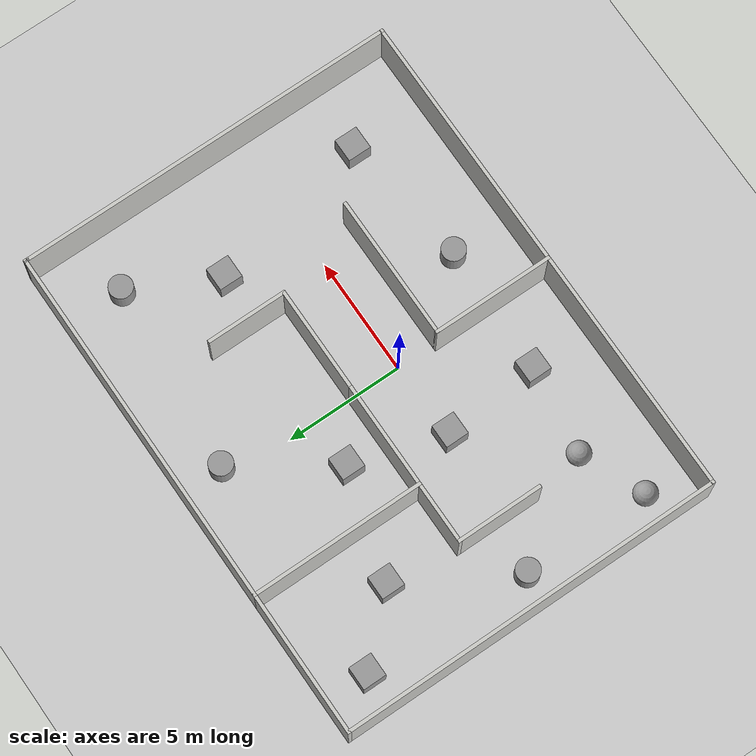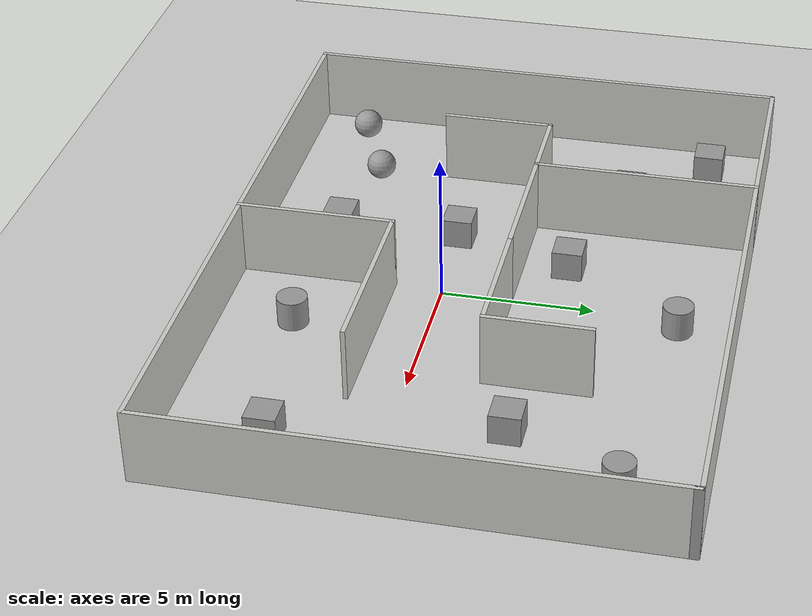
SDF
<sdf version="1.6">
 <world name="default">
  <light name="sun" type="directional">
   <pose>0 0 10 0 -0 0</pose>
   <diffuse>0.8 0.8 0.8 1</diffuse>
   <specular>0.2 0.2 0.2 1</specular>
   <attenuation>
    <range>1000</range>
    <constant>0.9</constant>
    <linear>0.01</linear>
    <quadratic>0.001</quadratic>
   </attenuation>
   <direction>-0.5 0.1 -0.9</direction>
  </light>
  <model name="ground_plane">
   <static>1</static>
   <link name="link">
    <collision name="collision">
     <geometry><plane><normal>0 0 1</normal><size>100 100</size></plane></geometry>
     <surface>
      <contact><collide_bitmask>65535</collide_bitmask></contact>
      <friction><ode><mu>100</mu><mu2>50</mu2></ode></friction>
     </surface>
    </collision>
    <visual name="visual">
     <cast_shadows>0</cast_shadows>
     <geometry><plane><normal>0 0 1</normal><size>100 100</size></plane></geometry>
     <material>
      <script><uri>file://media/materials/scripts/gazebo.material</uri><name>Gazebo/Grey</name></script>
     </material>
    </visual>
   </link>
  </model>
  <gravity>0 0 -9.8</gravity>
  <magnetic_field>6e-06 2.3e-05 -4.2e-05</magnetic_field>
  <atmosphere type="adiabatic"/>
  <physics name="default_physics" default="0" type="ode">
   <max_step_size>0.001</max_step_size>
   <real_time_factor>1</real_time_factor>
   <real_time_update_rate>1000</real_time_update_rate>
  </physics>
  <scene><ambient>0.4 0.4 0.4 1</ambient><background>0.7 0.7 0.7 1</background><shadows>1</shadows></scene>
  <audio><device>default</device></audio>
  <spherical_coordinates>
   <surface_model>EARTH_WGS84</surface_model>
   <latitude_deg>0</latitude_deg>
   <longitude_deg>0</longitude_deg>
   <elevation>0</elevation>
   <heading_deg>0</heading_deg>
  </spherical_coordinates>
  <model name="Home1">
   <pose>0.11 1.42907 0 0 -0 0</pose>
   <link name="Wall_0">
    <collision name="Wall_0_Collision">
     <geometry><box><size>4.75 0.15 2.5</size></box></geometry>
     <pose>0 0 1.25 0 -0 0</pose>
    </collision>
    <visual name="Wall_0_Visual">
     <pose>0 0 1.25 0 -0 0</pose>
     <geometry><box><size>4.75 0.15 2.5</size></box></geometry>
     <material>
      <script><uri>file://media/materials/scripts/gazebo.material</uri><name>Gazebo/CeilingTiled</name></script>
      <ambient>1 1 1 1</ambient>
     </material>
     <meta><layer>0</layer></meta>
    </visual>
    <pose>-2.4 0.825 0 0 -0 3.14159</pose>
   </link>
   <link name="Wall_1">
    <collision name="Wall_1_Collision">
     <geometry><box><size>7.5 0.15 2.5</size></box></geometry>
     <pose>0 0 1.25 0 -0 0</pose>
    </collision>
    <visual name="Wall_1_Visual">
     <pose>0 0 1.25 0 -0 0</pose>
     <geometry><box><size>7.5 0.15 2.5</size></box></geometry>
     <material>
      <script><uri>file://media/materials/scripts/gazebo.material</uri><name>Gazebo/CeilingTiled</name></script>
      <ambient>1 1 1 1</ambient>
     </material>
     <meta><layer>0</layer></meta>
    </visual>
    <pose>-4.7 4.5 0 0 -0 1.5708</pose>
   </link>
   <link name="Wall_12">
    <collision name="Wall_12_Collision">
     <geometry><box><size>2.75 0.15 2.5</size></box></geometry>
     <pose>0 0 1.25 0 -0 0</pose>
    </collision>
    <visual name="Wall_12_Visual">
     <pose>0 0 1.25 0 -0 0</pose>
     <geometry><box><size>2.75 0.15 2.5</size></box></geometry>
     <material>
      <script><uri>file://media/materials/scripts/gazebo.material</uri><name>Gazebo/CeilingTiled</name></script>
      <ambient>1 1 1 1</ambient>
     </material>
     <meta><layer>0</layer></meta>
    </visual>
    <pose>-6 0.825 0 0 -0 3.14159</pose>
   </link>
   <link name="Wall_13">
    <collision name="Wall_13_Collision">
     <geometry><box><size>3.75 0.15 2.5</size></box></geometry>
     <pose>0 0 1.25 0 -0 0</pose>
    </collision>
    <visual name="Wall_13_Visual">
     <pose>0 0 1.25 0 -0 0</pose>
     <geometry><box><size>3.75 0.15 2.5</size></box></geometry>
     <material>
      <script><uri>file://media/materials/scripts/gazebo.material</uri><name>Gazebo/CeilingTiled</name></script>
      <ambient>1 1 1 1</ambient>
     </material>
     <meta><layer>0</layer></meta>
    </visual>
    <pose>-7.3 -0.975 0 0 -0 -1.5708</pose>
   </link>
   <link name="Wall_15">
    <collision name="Wall_15_Collision">
     <geometry><box><size>5.25 0.15 2.5</size></box></geometry>
     <pose>0 0 1.25 0 -0 0</pose>
    </collision>
    <visual name="Wall_15_Visual">
     <pose>0 0 1.25 0 -0 0</pose>
     <geometry><box><size>5.25 0.15 2.5</size></box></geometry>
     <material>
      <script><uri>file://media/materials/scripts/gazebo.material</uri><name>Gazebo/CeilingTiled</name></script>
      <ambient>1 1 1 1</ambient>
     </material>
     <meta><layer>0</layer></meta>
    </visual>
    <pose>-0.281036 -5.61685 0 0 -0 1.5708</pose>
   </link>
   <link name="Wall_17">
    <collision name="Wall_17_Collision">
     <geometry><box><size>4.5 0.15 2.5</size></box></geometry>
     <pose>0 0 1.25 0 -0 0</pose>
    </collision>
    <visual name="Wall_17_Visual">
     <pose>0 0 1.25 0 -0 0</pose>
     <geometry><box><size>4.5 0.15 2.5</size></box></geometry>
     <material>
      <script><uri>file://media/materials/scripts/gazebo.material</uri><name>Gazebo/CeilingTiled</name></script>
      <ambient>1 1 1 1</ambient>
     </material>
     <meta><layer>0</layer></meta>
    </visual>
    <pose>2.075 0.825 0 0 -0 0</pose>
   </link>
   <link name="Wall_19">
    <collision name="Wall_19_Collision">
     <geometry><box><size>6.25 0.15 2.5</size></box></geometry>
     <pose>0 0 1.25 0 -0 0</pose>
    </collision>
    <visual name="Wall_19_Visual">
     <pose>0 0 1.25 0 -0 0</pose>
     <geometry><box><size>6.25 0.15 2.5</size></box></geometry>
     <material>
      <script><uri>file://media/materials/scripts/gazebo.material</uri><name>Gazebo/CeilingTiled</name></script>
      <ambient>1 1 1 1</ambient>
     </material>
     <meta><layer>0</layer></meta>
    </visual>
    <pose>2.76896 -3.06685 0 0 -0 0</pose>
   </link>
   <link name="Wall_2">
    <collision name="Wall_2_Collision">
     <geometry><box><size>6.25 0.15 2.5</size></box></geometry>
     <pose>0 0 1.25 0 -0 0</pose>
    </collision>
    <visual name="Wall_2_Visual">
     <pose>0 0 1.25 0 -0 0</pose>
     <geometry><box><size>6.25 0.15 2.5</size></box></geometry>
     <material>
      <script><uri>file://media/materials/scripts/gazebo.material</uri><name>Gazebo/CeilingTiled</name></script>
      <ambient>1 1 1 1</ambient>
     </material>
     <meta><layer>0</layer></meta>
    </visual>
    <pose>-7.75 8.175 0 0 -0 3.14159</pose>
   </link>
   <link name="Wall_21">
    <collision name="Wall_21_Collision">
     <geometry><box><size>3.5 0.15 2.5</size></box></geometry>
     <pose>0 0 1.25 0 -0 0</pose>
    </collision>
    <visual name="Wall_21_Visual">
     <pose>0 0 1.25 0 -0 0</pose>
     <geometry><box><size>3.5 0.15 2.5</size></box></geometry>
     <material>
      <script><uri>file://media/materials/scripts/gazebo.material</uri><name>Gazebo/CeilingTiled</name></script>
      <ambient>1 1 1 1</ambient>
     </material>
     <meta><layer>0</layer></meta>
    </visual>
    <pose>4.25 2.5 0 0 -0 1.5708</pose>
   </link>
   <link name="Wall_3">
    <collision name="Wall_3_Collision">
     <geometry><box><size>16.5 0.15 2.5</size></box></geometry>
     <pose>0 0 1.25 0 -0 0</pose>
    </collision>
    <visual name="Wall_3_Visual">
     <pose>0 0 1.25 0 -0 0</pose>
     <geometry><box><size>16.5 0.15 2.5</size></box></geometry>
     <material>
      <script><uri>file://media/materials/scripts/gazebo.material</uri><name>Gazebo/CeilingTiled</name></script>
      <ambient>1 1 1 1</ambient>
     </material>
     <meta><layer>0</layer></meta>
    </visual>
    <pose>-10.8 0 0 0 -0 -1.5708</pose>
   </link>
   <link name="Wall_4">
    <collision name="Wall_4_Collision">
     <geometry><box><size>21.75 0.15 2.5</size></box></geometry>
     <pose>0 0 1.25 0 -0 0</pose>
    </collision>
    <visual name="Wall_4_Visual">
     <pose>0 0 1.25 0 -0 0</pose>
     <geometry><box><size>21.75 0.15 2.5</size></box></geometry>
     <material>
      <script><uri>file://media/materials/scripts/gazebo.material</uri><name>Gazebo/CeilingTiled</name></script>
      <ambient>1 1 1 1</ambient>
     </material>
     <meta><layer>0</layer></meta>
    </visual>
    <pose>-0 -8.175 0 0 -0 0</pose>
   </link>
   <link name="Wall_5">
    <collision name="Wall_5_Collision">
     <geometry><box><size>16.5 0.15 2.5</size></box></geometry>
     <pose>0 0 1.25 0 -0 0</pose>
    </collision>
    <visual name="Wall_5_Visual">
     <pose>0 0 1.25 0 -0 0</pose>
     <geometry><box><size>16.5 0.15 2.5</size></box></geometry>
     <material>
      <script><uri>file://media/materials/scripts/gazebo.material</uri><name>Gazebo/CeilingTiled</name></script>
      <ambient>1 1 1 1</ambient>
     </material>
     <meta><layer>0</layer></meta>
    </visual>
    <pose>10.8 0 0 0 -0 1.5708</pose>
   </link>
   <link name="Wall_6">
    <collision name="Wall_6_Collision">
     <geometry><box><size>0.3 0.15 2.5</size></box></geometry>
     <pose>0 0 1.25 0 -0 0</pose>
    </collision>
    <visual name="Wall_6_Visual">
     <pose>0 0 1.25 0 -0 0</pose>
     <geometry><box><size>0.3 0.15 2.5</size></box></geometry>
     <material>
      <script><uri>file://media/materials/scripts/gazebo.material</uri><name>Gazebo/Grey</name></script>
      <ambient>1 1 1 1</ambient>
     </material>
     <meta><layer>0</layer></meta>
    </visual>
    <pose>10.8 8.1 0 0 -0 -1.5708</pose>
   </link>
   <link name="Wall_9">
    <collision name="Wall_9_Collision">
     <geometry><box><size>15.65 0.15 2.5</size></box></geometry>
     <pose>0 0 1.25 0 -0 0</pose>
    </collision>
    <visual name="Wall_9_Visual">
     <pose>0 0 1.25 0 -0 0</pose>
     <geometry><box><size>15.65 0.15 2.5</size></box></geometry>
     <material>
      <script><uri>file://media/materials/scripts/gazebo.material</uri><name>Gazebo/CeilingTiled</name></script>
      <ambient>1 1 1 1</ambient>
     </material>
     <meta><layer>0</layer></meta>
    </visual>
    <pose>3.05 8.175 0 0 -0 0</pose>
   </link>
   <static>1</static>
  </model>
  <model name="unit_box">
   <pose>-2.10298 3.82672 0.499995 0 1e-05 0</pose>
   <link name="link">
    <inertial>
     <mass>1</mass>
     <inertia>
      <ixx>0.166667</ixx>
      <ixy>0</ixy>
      <ixz>0</ixz>
      <iyy>0.166667</iyy>
      <iyz>0</iyz>
      <izz>0.166667</izz>
     </inertia>
    </inertial>
    <collision name="collision"><geometry><box><size>1 1 1</size></box></geometry></collision>
    <visual name="visual">
     <geometry><box><size>1 1 1</size></box></geometry>
     <material>
      <script><name>Gazebo/Grey</name><uri>file://media/materials/scripts/gazebo.material</uri></script>
     </material>
    </visual>
   </link>
  </model>
  <model name="unit_box_0">
   <pose>6.68602 3.48911 0.499995 -1e-05 -0 -0</pose>
   <link name="link">
    <inertial>
     <mass>1</mass>
     <inertia>
      <ixx>0.166667</ixx>
      <ixy>0</ixy>
      <ixz>0</ixz>
      <iyy>0.166667</iyy>
      <iyz>0</iyz>
      <izz>0.166667</izz>
     </inertia>
    </inertial>
    <collision name="collision"><geometry><box><size>1 1 1</size></box></geometry></collision>
    <visual name="visual">
     <geometry><box><size>1 1 1</size></box></geometry>
     <material>
      <script><name>Gazebo/Grey</name><uri>file://media/materials/scripts/gazebo.material</uri></script>
     </material>
    </visual>
   </link>
  </model>
  <model name="unit_box_1">
   <pose>8.19061 -3.50544 0.499995 0 1e-05 0</pose>
   <link name="link">
    <inertial>
     <mass>1</mass>
     <inertia>
      <ixx>0.166667</ixx>
      <ixy>0</ixy>
      <ixz>0</ixz>
      <iyy>0.166667</iyy>
      <iyz>0</iyz>
      <izz>0.166667</izz>
     </inertia>
    </inertial>
    <collision name="collision"><geometry><box><size>1 1 1</size></box></geometry></collision>
    <visual name="visual">
     <geometry><box><size>1 1 1</size></box></geometry>
     <material>
      <script><name>Gazebo/Grey</name><uri>file://media/materials/scripts/gazebo.material</uri></script>
     </material>
    </visual>
   </link>
  </model>
  <model name="unit_box_2">
   <pose>-3.27465 -0.104765 0.499995 -1e-05 -0 -0</pose>
   <link name="link">
    <inertial>
     <mass>1</mass>
     <inertia>
      <ixx>0.166667</ixx>
      <ixy>0</ixy>
      <ixz>0</ixz>
      <iyy>0.166667</iyy>
      <iyz>0</iyz>
      <izz>0.166667</izz>
     </inertia>
    </inertial>
    <collision name="collision"><geometry><box><size>1 1 1</size></box></geometry></collision>
    <visual name="visual">
     <geometry><box><size>1 1 1</size></box></geometry>
     <material>
      <script><name>Gazebo/Grey</name><uri>file://media/materials/scripts/gazebo.material</uri></script>
     </material>
    </visual>
   </link>
  </model>
  <model name="unit_box_3">
   <pose>-9.07251 7.66894 0.499995 0 1e-05 0</pose>
   <link name="link">
    <inertial>
     <mass>1</mass>
     <inertia>
      <ixx>0.166667</ixx>
      <ixy>0</ixy>
      <ixz>0</ixz>
      <iyy>0.166667</iyy>
      <iyz>0</iyz>
      <izz>0.166667</izz>
     </inertia>
    </inertial>
    <collision name="collision"><geometry><box><size>1 1 1</size></box></geometry></collision>
    <visual name="visual">
     <geometry><box><size>1 1 1</size></box></geometry>
     <material>
      <script><name>Gazebo/Grey</name><uri>file://media/materials/scripts/gazebo.material</uri></script>
     </material>
    </visual>
   </link>
  </model>
  <model name="unit_box_4">
   <pose>-6.67561 5.17488 0.499995 -1e-05 -0 -0</pose>
   <link name="link">
    <inertial>
     <mass>1</mass>
     <inertia>
      <ixx>0.166667</ixx>
      <ixy>0</ixy>
      <ixz>0</ixz>
      <iyy>0.166667</iyy>
      <iyz>0</iyz>
      <izz>0.166667</izz>
     </inertia>
    </inertial>
    <collision name="collision"><geometry><box><size>1 1 1</size></box></geometry></collision>
    <visual name="visual">
     <geometry><box><size>1 1 1</size></box></geometry>
     <material>
      <script><name>Gazebo/Grey</name><uri>file://media/materials/scripts/gazebo.material</uri></script>
     </material>
    </visual>
   </link>
  </model>
  <model name="unit_box_5">
   <pose>-2.98305 -4.15362 0.499995 0 1e-05 0</pose>
   <link name="link">
    <inertial>
     <mass>1</mass>
     <inertia>
      <ixx>0.166667</ixx>
      <ixy>0</ixy>
      <ixz>0</ixz>
      <iyy>0.166667</iyy>
      <iyz>0</iyz>
      <izz>0.166667</izz>
     </inertia>
    </inertial>
    <collision name="collision"><geometry><box><size>1 1 1</size></box></geometry></collision>
    <visual name="visual">
     <geometry><box><size>1 1 1</size></box></geometry>
     <material>
      <script><name>Gazebo/Grey</name><uri>file://media/materials/scripts/gazebo.material</uri></script>
     </material>
    </visual>
   </link>
  </model>
  <model name="unit_cylinder">
   <pose>-9.33159 0.575437 0.499992 -4e-06 4e-06 0</pose>
   <link name="link">
    <inertial>
     <mass>1</mass>
     <inertia><ixx>0.145833</ixx><ixy>0</ixy><ixz>0</ixz><iyy>0.145833</iyy><iyz>0</iyz><izz>0.125</izz></inertia>
    </inertial>
    <collision name="collision">
     <geometry><cylinder><radius>0.5</radius><length>1</length></cylinder></geometry>
    </collision>
    <visual name="visual">
     <geometry><cylinder><radius>0.5</radius><length>1</length></cylinder></geometry>
     <material>
      <script><name>Gazebo/Grey</name><uri>file://media/materials/scripts/gazebo.material</uri></script>
     </material>
    </visual>
   </link>
  </model>
  <model name="unit_cylinder_0">
   <pose>0.541553 7.75357 0.5 -0 -0 -0</pose>
   <link name="link">
    <inertial>
     <mass>1</mass>
     <inertia><ixx>0.145833</ixx><ixy>0</ixy><ixz>0</ixz><iyy>0.145833</iyy><iyz>0</iyz><izz>0.125</izz></inertia>
    </inertial>
    <collision name="collision">
     <geometry><cylinder><radius>0.5</radius><length>1</length></cylinder></geometry>
    </collision>
    <visual name="visual">
     <geometry><cylinder><radius>0.5</radius><length>1</length></cylinder></geometry>
     <material>
      <script><name>Gazebo/Grey</name><uri>file://media/materials/scripts/gazebo.material</uri></script>
     </material>
    </visual>
   </link>
  </model>
  <model name="unit_cylinder_1">
   <pose>2.48582 -4.29264 0.499997 3e-06 4e-06 -0</pose>
   <link name="link">
    <inertial>
     <mass>1</mass>
     <inertia><ixx>0.145833</ixx><ixy>0</ixy><ixz>0</ixz><iyy>0.145833</iyy><iyz>0</iyz><izz>0.125</izz></inertia>
    </inertial>
    <collision name="collision">
     <geometry><cylinder><radius>0.5</radius><length>1</length></cylinder></geometry>
    </collision>
    <visual name="visual">
     <geometry><cylinder><radius>0.5</radius><length>1</length></cylinder></geometry>
     <material>
      <script><name>Gazebo/Grey</name><uri>file://media/materials/scripts/gazebo.material</uri></script>
     </material>
    </visual>
   </link>
  </model>
  <model name="unit_cylinder_2">
   <pose>8.46335 7.0598 0.499993 -3e-06 -4e-06 -0</pose>
   <link name="link">
    <inertial>
     <mass>1</mass>
     <inertia><ixx>0.145833</ixx><ixy>0</ixy><ixz>0</ixz><iyy>0.145833</iyy><iyz>0</iyz><izz>0.125</izz></inertia>
    </inertial>
    <collision name="collision">
     <geometry><cylinder><radius>0.5</radius><length>1</length></cylinder></geometry>
    </collision>
    <visual name="visual">
     <geometry><cylinder><radius>0.5</radius><length>1</length></cylinder></geometry>
     <material>
      <script><name>Gazebo/Grey</name><uri>file://media/materials/scripts/gazebo.material</uri></script>
     </material>
    </visual>
   </link>
  </model>
  <model name="unit_sphere">
   <pose>-6.69743 -3.67791 0.5 0 -0 0</pose>
   <link name="link">
    <inertial>
     <mass>1</mass>
     <inertia><ixx>0.1</ixx><ixy>0</ixy><ixz>0</ixz><iyy>0.1</iyy><iyz>0</iyz><izz>0.1</izz></inertia>
    </inertial>
    <collision name="collision"><geometry><sphere><radius>0.5</radius></sphere></geometry></collision>
    <visual name="visual">
     <geometry><sphere><radius>0.5</radius></sphere></geometry>
     <material>
      <script><name>Gazebo/Grey</name><uri>file://media/materials/scripts/gazebo.material</uri></script>
     </material>
    </visual>
   </link>
  </model>
  <model name="unit_sphere_0">
   <pose>-9.38573 -4.84401 0.5 0 -0 0</pose>
   <link name="link">
    <inertial>
     <mass>1</mass>
     <inertia><ixx>0.1</ixx><ixy>0</ixy><ixz>0</ixz><iyy>0.1</iyy><iyz>0</iyz><izz>0.1</izz></inertia>
    </inertial>
    <collision name="collision"><geometry><sphere><radius>0.5</radius></sphere></geometry></collision>
    <visual name="visual">
     <geometry><sphere><radius>0.5</radius></sphere></geometry>
     <material>
      <script><name>Gazebo/Grey</name><uri>file://media/materials/scripts/gazebo.material</uri></script>
     </material>
    </visual>
   </link>
  </model>
 </world>
</sdf>
